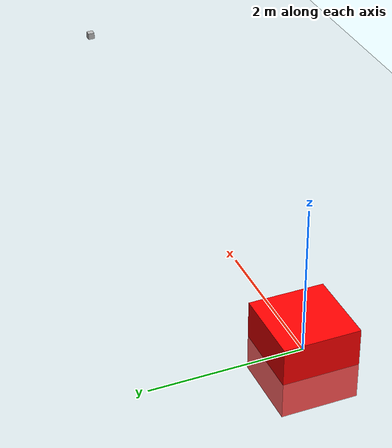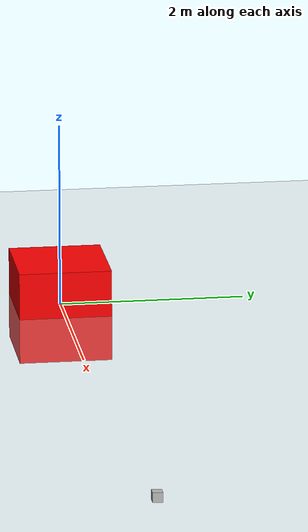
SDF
<?xml version="1.0" ?>

<sdf version="1.6">
  <world name="particle_emitters">

    <physics name="1ms" type="ode">
      <max_step_size>0.001</max_step_size>
      <real_time_factor>1.0</real_time_factor>
    </physics>

    <plugin
      filename="libignition-gazebo-sensors-system.so"
      name="ignition::gazebo::systems::Sensors">
      <render_engine>ogre2</render_engine>
    </plugin>
    <plugin
      filename="libignition-gazebo-particle-emitter-system.so"
      name="ignition::gazebo::systems::ParticleEmitter">
    </plugin>

    <gui fullscreen="0">

      <plugin filename="ImageDisplay" name="Image Display">
        <ignition-gui>
          <title>RGB camera</title>
          <property key="state" type="string">floating</property>
          <property type="double" key="width">350</property>
          <property type="double" key="height">315</property>
        </ignition-gui>
        <topic>camera</topic>
        <topic_picker>false</topic_picker>
      </plugin>
      <plugin filename="ImageDisplay" name="Image Display 2">
        <ignition-gui>
          <title>Depth camera</title>
          <property key="state" type="string">floating</property>
          <property type="double" key="width">350</property>
          <property type="double" key="height">315</property>
          <property type="double" key="x">500</property>
        </ignition-gui>
        <topic>depth_camera</topic>
        <topic_picker>false</topic_picker>
      </plugin>
      <plugin filename="ImageDisplay" name="Image Display 3">
        <ignition-gui>
          <title>RGBD: image</title>
          <property key="state" type="string">floating</property>
          <property type="double" key="width">350</property>
          <property type="double" key="height">315</property>
          <property type="double" key="y">320</property>
        </ignition-gui>
        <topic>rgbd_camera/image</topic>
        <topic_picker>false</topic_picker>
      </plugin>
      <plugin filename="ImageDisplay" name="Image Display 3">
        <ignition-gui>
          <title>RGBD: depth</title>
          <property key="state" type="string">floating</property>
          <property type="double" key="width">350</property>
          <property type="double" key="height">315</property>
          <property type="double" key="x">500</property>
          <property type="double" key="y">320</property>
        </ignition-gui>
        <topic>rgbd_camera/depth_image</topic>
        <topic_picker>false</topic_picker>
      </plugin>
      <plugin filename="ImageDisplay" name="Image Display 5">
        <ignition-gui>
          <title>Thermal camera</title>
          <property key="state" type="string">floating</property>
          <property type="double" key="width">350</property>
          <property type="double" key="height">315</property>
          <property type="double" key="x">500</property>
          <property type="double" key="y">640</property>
        </ignition-gui>
        <topic>thermal_camera</topic>
        <topic_picker>false</topic_picker>
      </plugin>

    </gui>

    <light type="directional" name="sun">
      <cast_shadows>true</cast_shadows>
      <pose>0 0 10 0 0 0</pose>
      <diffuse>1 1 1 1</diffuse>
      <specular>0.5 0.5 0.5 1</specular>
      <attenuation>
        <range>1000</range>
        <constant>0.9</constant>
        <linear>0.01</linear>
        <quadratic>0.001</quadratic>
      </attenuation>
      <direction>-0.5 0.1 -0.9</direction>
    </light>

    <model name="ground_plane">
      <static>true</static>
      <link name="link">
        <collision name="collision">
          <geometry>
            <plane>
              <normal>0 0 1</normal>
            </plane>
          </geometry>
        </collision>
        <visual name="visual">
          <geometry>
            <plane>
              <normal>0 0 1</normal>
              <size>100 100</size>
            </plane>
          </geometry>
          <material>
            <ambient>0.8 0.8 0.8 1</ambient>
            <diffuse>0.8 0.8 0.8 1</diffuse>
            <specular>0.8 0.8 0.8 1</specular>
          </material>
        </visual>
      </link>
    </model>

    <include>
      <uri>model://fire_generator</uri>
    </include>

    <model name="camera_with_lidar">
      <pose>8 0 0.5 0 0.0 3.14</pose>
      <link name="link">
        <pose>0.05 0.05 0.05 0 0 0</pose>
        <inertial>
          <mass>0.1</mass>
          <inertia>
            <ixx>0.000166667</ixx>
            <iyy>0.000166667</iyy>
            <izz>0.000166667</izz>
          </inertia>
        </inertial>
        <collision name="collision">
          <geometry>
            <box>
              <size>0.1 0.1 0.1</size>
            </box>
          </geometry>
        </collision>
        <visual name="visual">
          <geometry>
            <box>
              <size>0.1 0.1 0.1</size>
            </box>
          </geometry>
        </visual>

        <sensor name="camera" type="camera">
          <camera>
            <horizontal_fov>1.047</horizontal_fov>
            <image>
              <width>320</width>
              <height>240</height>
            </image>
            <clip>
              <near>0.1</near>
              <far>100</far>
            </clip>
          </camera>
          <always_on>1</always_on>
          <update_rate>30</update_rate>
          <visualize>true</visualize>
          <topic>camera</topic>
        </sensor>

        <sensor name="depth_camera1" type="depth_camera">
          <update_rate>10</update_rate>
          <topic>depth_camera</topic>
          <camera>
            <horizontal_fov>1.05</horizontal_fov>
            <image>
              <width>320</width>
              <height>240</height>
              <format>R_FLOAT32</format>
            </image>
            <clip>
              <near>0.1</near>
              <far>100.0</far>
            </clip>
          </camera>
        </sensor>

        <sensor name='gpu_lidar' type='gpu_lidar'>"
          <topic>lidar</topic>
          <update_rate>10</update_rate>
          <ray>
            <scan>
              <horizontal>
                <samples>640</samples>
                <resolution>1</resolution>
                <min_angle>-1.396263</min_angle>
                <max_angle>1.396263</max_angle>
              </horizontal>
              <vertical>
                <samples>1</samples>
                <resolution>0.01</resolution>
                <min_angle>0</min_angle>
                <max_angle>0</max_angle>
              </vertical>
            </scan>
            <range>
              <min>0.08</min>
              <max>10.0</max>
              <resolution>0.01</resolution>
            </range>
          </ray>
          <always_on>1</always_on>
          <visualize>false</visualize>
        </sensor>
      </link>

      <static>true</static>
    </model>

    <model name="rgbd_camera">
      <pose>8 0 0.5 0 0.0 3.14</pose>
      <static>true</static>
      <link name="link">
        <pose>0.05 0.05 0.05 0 0 0</pose>
        <collision name="collision">
          <geometry>
            <box>
              <size>0.1 0.1 0.1</size>
            </box>
          </geometry>
        </collision>
        <visual name="visual">
          <geometry>
            <box>
              <size>0.1 0.1 0.1</size>
            </box>
          </geometry>
        </visual>
        <sensor name="rgbd_camera" type="rgbd_camera">
          <camera>
            <horizontal_fov>1.047</horizontal_fov>
            <image>
              <width>320</width>
              <height>240</height>
            </image>
            <clip>
              <near>0.1</near>
              <far>100</far>
            </clip>
          </camera>
          <always_on>1</always_on>
          <update_rate>30</update_rate>
          <visualize>true</visualize>
          <topic>rgbd_camera</topic>
        </sensor>
      </link>
      <static>true</static>
    </model>

    <model name="thermal_camera">
      <pose>8 0 0.5 0 0.0 3.14</pose>
      <static>true</static>
      <link name="link">
        <pose>0.05 0.05 0.05 0 0 0</pose>
        <collision name="collision">
          <geometry>
            <box>
              <size>0.1 0.1 0.1</size>
            </box>
          </geometry>
        </collision>
        <visual name="visual">
          <geometry>
            <box>
              <size>0.1 0.1 0.1</size>
            </box>
          </geometry>
        </visual>
        <sensor name="thermal_camera" type="thermal_camera">
          <camera>
            <horizontal_fov>1.047</horizontal_fov>
            <image>
              <width>320</width>
              <height>240</height>
            </image>
            <clip>
              <near>0.1</near>
              <far>100</far>
            </clip>
          </camera>
          <always_on>1</always_on>
          <update_rate>30</update_rate>
          <visualize>true</visualize>
          <topic>thermal_camera</topic>
        </sensor>
      </link>
    </model>
  </world>
</sdf>

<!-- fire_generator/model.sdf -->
<sdf version="1.6">
  <model name="fire_generator">
    <pose>0 0 0 0 -1.5707 0</pose>
    <static>true</static>
    <link name="fire_link">
      <particle_emitter name="emitter" type="box">
        <emitting>true</emitting>
        <size>1 1 1 </size>
        <particle_size>0.3 0.3 0.3</particle_size>
        <lifetime>5</lifetime>
        <min_velocity>0.1</min_velocity>
        <max_velocity>0.2</max_velocity>
        <scale_rate>0.5</scale_rate>
        <rate>50</rate>
        <material>
          <diffuse>0.7 0.7 0.7</diffuse>
          <specular>1.0 1.0 1.0</specular>
          <pbr>
            <metal>
              <albedo_map>materials/textures/fire.png</albedo_map>
            </metal>
          </pbr>
        </material>
        <color_range_image>materials/textures/firecolors.png</color_range_image>
      </particle_emitter>
    </link>
    <link name="thermal_link">
    <visual name="fire_visual">
      <geometry>
        <box>
          <size>1 1 1 </size>
        </box>
      </geometry>
      <material>
        <ambient>1 0 0 1</ambient>
        <diffuse>1 0 0 1</diffuse>
        <specular>1 0 0 1</specular>
      </material>
      <plugin filename="ignition-gazebo-thermal-system" name="ignition::gazebo::systems::Thermal">
          <heat_signature>materials/textures/fire_thermal.png</heat_signature>
          <max_temp>1200</max_temp>
        </plugin>
    </visual>
  </link>
    <plugin
      filename="libignition-gazebo-particle-emitter-system.so"
      name="ignition::gazebo::systems::ParticleEmitter">
    </plugin>

  </model>
</sdf>
